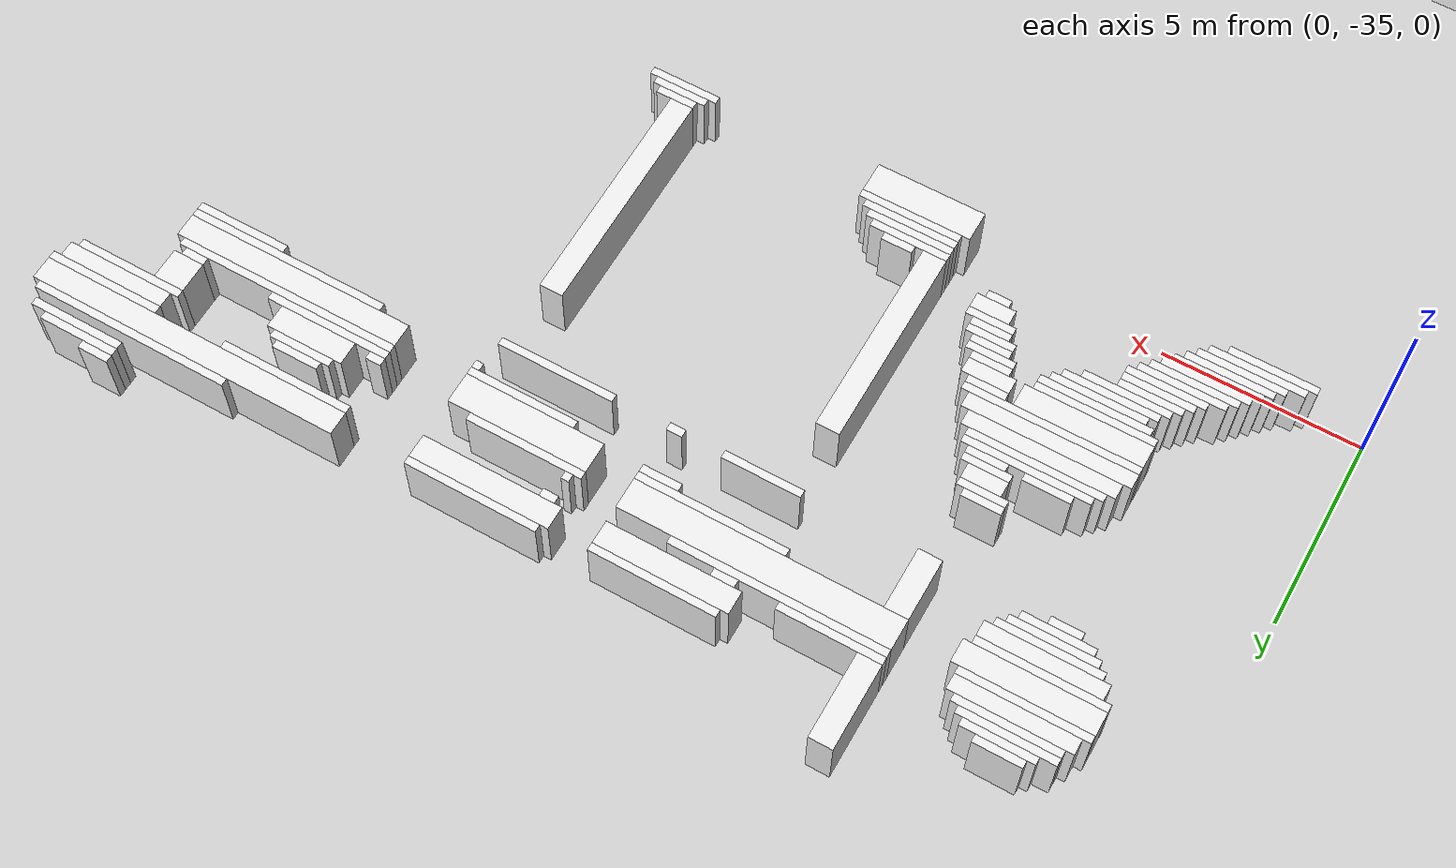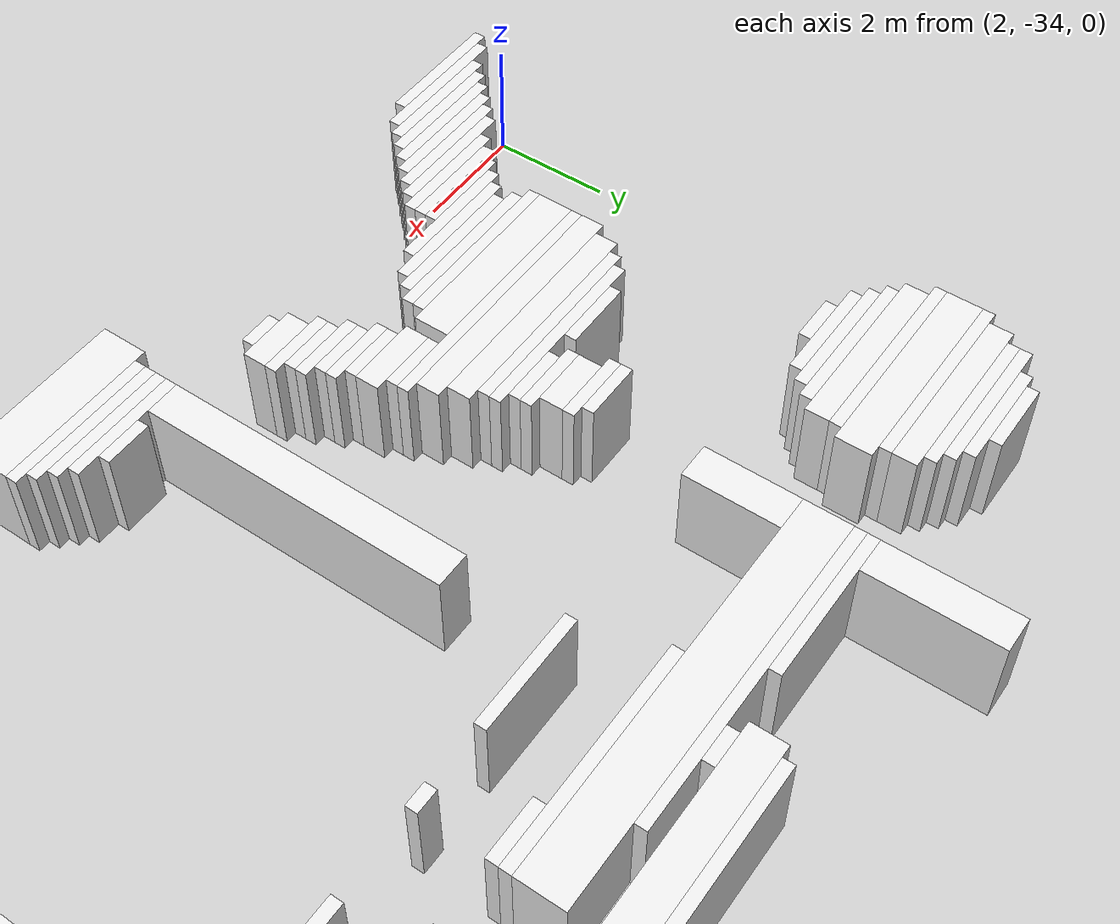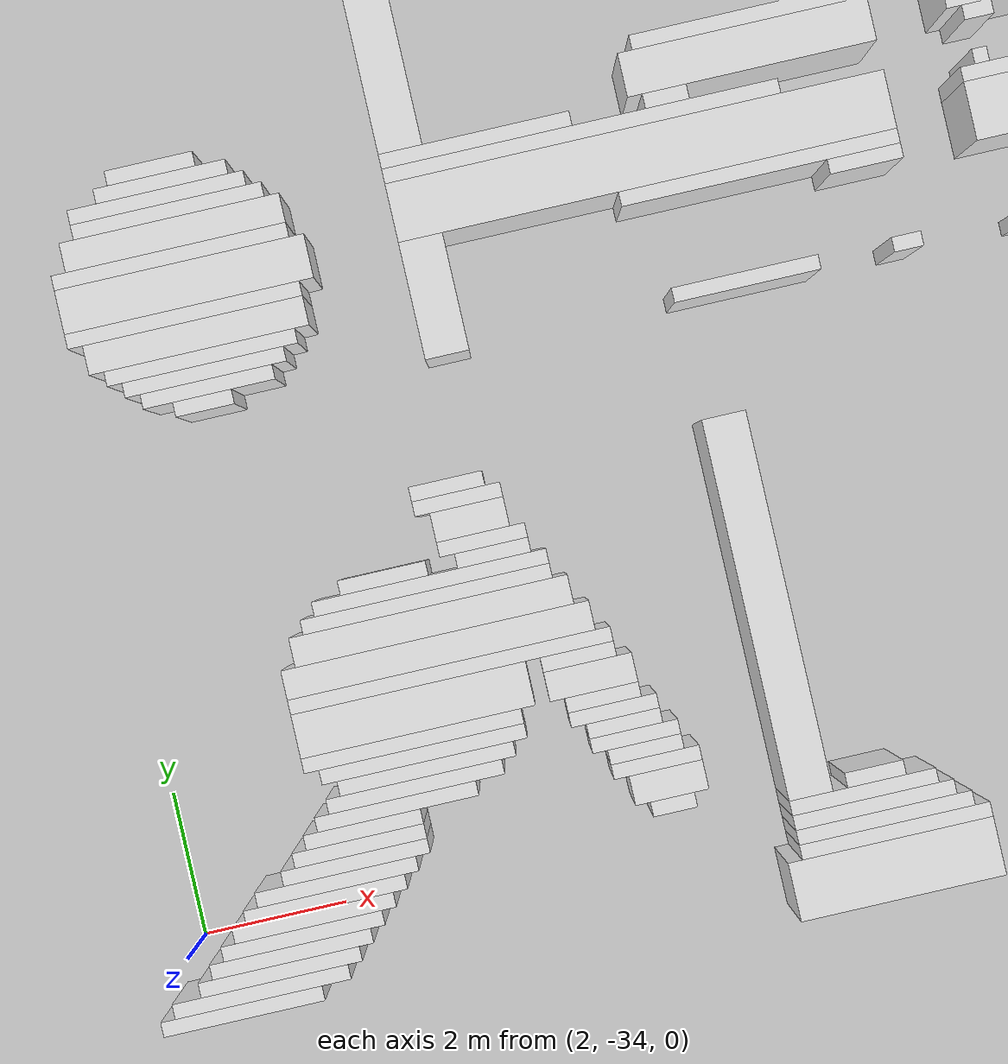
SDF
<sdf version="1.7">
 <world name="default">
  <model name="ground_plane">
   <static>1</static>
   <link name="link">
    <collision name="collision">
     <geometry><plane><normal>0 0 1</normal><size>120 120</size></plane></geometry>
    </collision>
    <visual name="visual">
     <geometry><plane><normal>0 0 1</normal><size>120 120</size></plane></geometry>
     <material>
      <script><uri>file://media/materials/scripts/gazebo.material</uri><name>Gazebo/Grey</name></script>
     </material>
    </visual>
   </link>
  </model>
  <model name="random_complex_03_model">
   <static>1</static>
   <link name="obs_2384">
    <pose>25.8000 -22.1000 0.8000 0 0 0</pose>
    <collision name="obs_2384_col"><geometry><box><size>0.8000 0.2000 1.6000</size></box></geometry></collision>
    <visual name="obs_2384_vis">
     <geometry><box><size>0.8000 0.2000 1.6000</size></box></geometry>
     <material>
      <script><uri>file://media/materials/scripts/gazebo.material</uri><name>Gazebo/White</name></script>
     </material>
    </visual>
   </link>
   <link name="obs_2390">
    <pose>26.4000 -22.3000 0.8000 0 0 0</pose>
    <collision name="obs_2390_col"><geometry><box><size>2.0000 0.2000 1.6000</size></box></geometry></collision>
    <visual name="obs_2390_vis">
     <geometry><box><size>2.0000 0.2000 1.6000</size></box></geometry>
     <material>
      <script><uri>file://media/materials/scripts/gazebo.material</uri><name>Gazebo/White</name></script>
     </material>
    </visual>
   </link>
   <link name="obs_2394">
    <pose>26.6000 -22.5000 0.8000 0 0 0</pose>
    <collision name="obs_2394_col"><geometry><box><size>2.4000 0.2000 1.6000</size></box></geometry></collision>
    <visual name="obs_2394_vis">
     <geometry><box><size>2.4000 0.2000 1.6000</size></box></geometry>
     <material>
      <script><uri>file://media/materials/scripts/gazebo.material</uri><name>Gazebo/White</name></script>
     </material>
    </visual>
   </link>
   <link name="obs_2403">
    <pose>25.4000 -22.9000 0.8000 0 0 0</pose>
    <collision name="obs_2403_col"><geometry><box><size>5.2000 0.2000 1.6000</size></box></geometry></collision>
    <visual name="obs_2403_vis">
     <geometry><box><size>5.2000 0.2000 1.6000</size></box></geometry>
     <material>
      <script><uri>file://media/materials/scripts/gazebo.material</uri><name>Gazebo/White</name></script>
     </material>
    </visual>
   </link>
   <link name="obs_2414">
    <pose>16.5000 -23.3000 0.8000 0 0 0</pose>
    <collision name="obs_2414_col"><geometry><box><size>3.4000 0.2000 1.6000</size></box></geometry></collision>
    <visual name="obs_2414_vis">
     <geometry><box><size>3.4000 0.2000 1.6000</size></box></geometry>
     <material>
      <script><uri>file://media/materials/scripts/gazebo.material</uri><name>Gazebo/White</name></script>
     </material>
    </visual>
   </link>
   <link name="obs_2417">
    <pose>24.1000 -23.3000 0.8000 0 0 0</pose>
    <collision name="obs_2417_col"><geometry><box><size>8.2000 0.6000 1.6000</size></box></geometry></collision>
    <visual name="obs_2417_vis">
     <geometry><box><size>8.2000 0.6000 1.6000</size></box></geometry>
     <material>
      <script><uri>file://media/materials/scripts/gazebo.material</uri><name>Gazebo/White</name></script>
     </material>
    </visual>
   </link>
   <link name="obs_2423">
    <pose>12.0000 -23.5000 0.8000 0 0 0</pose>
    <collision name="obs_2423_col"><geometry><box><size>3.2000 0.2000 1.6000</size></box></geometry></collision>
    <visual name="obs_2423_vis">
     <geometry><box><size>3.2000 0.2000 1.6000</size></box></geometry>
     <material>
      <script><uri>file://media/materials/scripts/gazebo.material</uri><name>Gazebo/White</name></script>
     </material>
    </visual>
   </link>
   <link name="obs_2428">
    <pose>3.8000 -23.7000 0.8000 0 0 0</pose>
    <collision name="obs_2428_col"><geometry><box><size>1.2000 0.2000 1.6000</size></box></geometry></collision>
    <visual name="obs_2428_vis">
     <geometry><box><size>1.2000 0.2000 1.6000</size></box></geometry>
     <material>
      <script><uri>file://media/materials/scripts/gazebo.material</uri><name>Gazebo/White</name></script>
     </material>
    </visual>
   </link>
   <link name="obs_2429">
    <pose>21.7000 -23.7000 0.8000 0 0 0</pose>
    <collision name="obs_2429_col"><geometry><box><size>3.4000 0.2000 1.6000</size></box></geometry></collision>
    <visual name="obs_2429_vis">
     <geometry><box><size>3.4000 0.2000 1.6000</size></box></geometry>
     <material>
      <script><uri>file://media/materials/scripts/gazebo.material</uri><name>Gazebo/White</name></script>
     </material>
    </visual>
   </link>
   <link name="obs_2430">
    <pose>26.7000 -23.7000 0.8000 0 0 0</pose>
    <collision name="obs_2430_col"><geometry><box><size>3.0000 0.2000 1.6000</size></box></geometry></collision>
    <visual name="obs_2430_vis">
     <geometry><box><size>3.0000 0.2000 1.6000</size></box></geometry>
     <material>
      <script><uri>file://media/materials/scripts/gazebo.material</uri><name>Gazebo/White</name></script>
     </material>
    </visual>
   </link>
   <link name="obs_2432">
    <pose>16.4000 -23.7000 0.8000 0 0 0</pose>
    <collision name="obs_2432_col"><geometry><box><size>3.6000 0.6000 1.6000</size></box></geometry></collision>
    <visual name="obs_2432_vis">
     <geometry><box><size>3.6000 0.6000 1.6000</size></box></geometry>
     <material>
      <script><uri>file://media/materials/scripts/gazebo.material</uri><name>Gazebo/White</name></script>
     </material>
    </visual>
   </link>
   <link name="obs_2436">
    <pose>3.9000 -23.9000 0.8000 0 0 0</pose>
    <collision name="obs_2436_col"><geometry><box><size>1.8000 0.2000 1.6000</size></box></geometry></collision>
    <visual name="obs_2436_vis">
     <geometry><box><size>1.8000 0.2000 1.6000</size></box></geometry>
     <material>
      <script><uri>file://media/materials/scripts/gazebo.material</uri><name>Gazebo/White</name></script>
     </material>
    </visual>
   </link>
   <link name="obs_2439">
    <pose>7.1000 -23.1000 0.8000 0 0 0</pose>
    <collision name="obs_2439_col"><geometry><box><size>0.6000 2.2000 1.6000</size></box></geometry></collision>
    <visual name="obs_2439_vis">
     <geometry><box><size>0.6000 2.2000 1.6000</size></box></geometry>
     <material>
      <script><uri>file://media/materials/scripts/gazebo.material</uri><name>Gazebo/White</name></script>
     </material>
    </visual>
   </link>
   <link name="obs_2440">
    <pose>11.9000 -23.9000 0.8000 0 0 0</pose>
    <collision name="obs_2440_col"><geometry><box><size>3.4000 0.6000 1.6000</size></box></geometry></collision>
    <visual name="obs_2440_vis">
     <geometry><box><size>3.4000 0.6000 1.6000</size></box></geometry>
     <material>
      <script><uri>file://media/materials/scripts/gazebo.material</uri><name>Gazebo/White</name></script>
     </material>
    </visual>
   </link>
   <link name="obs_2442">
    <pose>26.6000 -24.0000 0.8000 0 0 0</pose>
    <collision name="obs_2442_col"><geometry><box><size>2.8000 0.4000 1.6000</size></box></geometry></collision>
    <visual name="obs_2442_vis">
     <geometry><box><size>2.8000 0.4000 1.6000</size></box></geometry>
     <material>
      <script><uri>file://media/materials/scripts/gazebo.material</uri><name>Gazebo/White</name></script>
     </material>
    </visual>
   </link>
   <link name="obs_2444">
    <pose>3.8000 -24.1000 0.8000 0 0 0</pose>
    <collision name="obs_2444_col"><geometry><box><size>2.4000 0.2000 1.6000</size></box></geometry></collision>
    <visual name="obs_2444_vis">
     <geometry><box><size>2.4000 0.2000 1.6000</size></box></geometry>
     <material>
      <script><uri>file://media/materials/scripts/gazebo.material</uri><name>Gazebo/White</name></script>
     </material>
    </visual>
   </link>
   <link name="obs_2445">
    <pose>15.0000 -24.1000 0.8000 0 0 0</pose>
    <collision name="obs_2445_col"><geometry><box><size>0.4000 0.2000 1.6000</size></box></geometry></collision>
    <visual name="obs_2445_vis">
     <geometry><box><size>0.4000 0.2000 1.6000</size></box></geometry>
     <material>
      <script><uri>file://media/materials/scripts/gazebo.material</uri><name>Gazebo/White</name></script>
     </material>
    </visual>
   </link>
   <link name="obs_2450">
    <pose>3.9000 -24.3000 0.8000 0 0 0</pose>
    <collision name="obs_2450_col"><geometry><box><size>2.6000 0.2000 1.6000</size></box></geometry></collision>
    <visual name="obs_2450_vis">
     <geometry><box><size>2.6000 0.2000 1.6000</size></box></geometry>
     <material>
      <script><uri>file://media/materials/scripts/gazebo.material</uri><name>Gazebo/White</name></script>
     </material>
    </visual>
   </link>
   <link name="obs_2451">
    <pose>8.1000 -24.3000 0.8000 0 0 0</pose>
    <collision name="obs_2451_col"><geometry><box><size>2.6000 0.2000 1.6000</size></box></geometry></collision>
    <visual name="obs_2451_vis">
     <geometry><box><size>2.6000 0.2000 1.6000</size></box></geometry>
     <material>
      <script><uri>file://media/materials/scripts/gazebo.material</uri><name>Gazebo/White</name></script>
     </material>
    </visual>
   </link>
   <link name="obs_2452">
    <pose>10.7000 -24.3000 0.8000 0 0 0</pose>
    <collision name="obs_2452_col"><geometry><box><size>0.6000 0.2000 1.6000</size></box></geometry></collision>
    <visual name="obs_2452_vis">
     <geometry><box><size>0.6000 0.2000 1.6000</size></box></geometry>
     <material>
      <script><uri>file://media/materials/scripts/gazebo.material</uri><name>Gazebo/White</name></script>
     </material>
    </visual>
   </link>
   <link name="obs_2453">
    <pose>21.8000 -24.3000 0.8000 0 0 0</pose>
    <collision name="obs_2453_col"><geometry><box><size>1.2000 0.2000 1.6000</size></box></geometry></collision>
    <visual name="obs_2453_vis">
     <geometry><box><size>1.2000 0.2000 1.6000</size></box></geometry>
     <material>
      <script><uri>file://media/materials/scripts/gazebo.material</uri><name>Gazebo/White</name></script>
     </material>
    </visual>
   </link>
   <link name="obs_2454">
    <pose>26.4000 -24.3000 0.8000 0 0 0</pose>
    <collision name="obs_2454_col"><geometry><box><size>2.8000 0.2000 1.6000</size></box></geometry></collision>
    <visual name="obs_2454_vis">
     <geometry><box><size>2.8000 0.2000 1.6000</size></box></geometry>
     <material>
      <script><uri>file://media/materials/scripts/gazebo.material</uri><name>Gazebo/White</name></script>
     </material>
    </visual>
   </link>
   <link name="obs_2459">
    <pose>9.5000 -24.5000 0.8000 0 0 0</pose>
    <collision name="obs_2459_col"><geometry><box><size>5.4000 0.2000 1.6000</size></box></geometry></collision>
    <visual name="obs_2459_vis">
     <geometry><box><size>5.4000 0.2000 1.6000</size></box></geometry>
     <material>
      <script><uri>file://media/materials/scripts/gazebo.material</uri><name>Gazebo/White</name></script>
     </material>
    </visual>
   </link>
   <link name="obs_2460">
    <pose>21.8000 -24.5000 0.8000 0 0 0</pose>
    <collision name="obs_2460_col"><geometry><box><size>1.6000 0.2000 1.6000</size></box></geometry></collision>
    <visual name="obs_2460_vis">
     <geometry><box><size>1.6000 0.2000 1.6000</size></box></geometry>
     <material>
      <script><uri>file://media/materials/scripts/gazebo.material</uri><name>Gazebo/White</name></script>
     </material>
    </visual>
   </link>
   <link name="obs_2463">
    <pose>3.9000 -24.6000 0.8000 0 0 0</pose>
    <collision name="obs_2463_col"><geometry><box><size>3.0000 0.4000 1.6000</size></box></geometry></collision>
    <visual name="obs_2463_vis">
     <geometry><box><size>3.0000 0.4000 1.6000</size></box></geometry>
     <material>
      <script><uri>file://media/materials/scripts/gazebo.material</uri><name>Gazebo/White</name></script>
     </material>
    </visual>
   </link>
   <link name="obs_2466">
    <pose>14.9000 -24.7000 0.8000 0 0 0</pose>
    <collision name="obs_2466_col"><geometry><box><size>0.2000 0.2000 1.6000</size></box></geometry></collision>
    <visual name="obs_2466_vis">
     <geometry><box><size>0.2000 0.2000 1.6000</size></box></geometry>
     <material>
      <script><uri>file://media/materials/scripts/gazebo.material</uri><name>Gazebo/White</name></script>
     </material>
    </visual>
   </link>
   <link name="obs_2471">
    <pose>3.8000 -24.9000 0.8000 0 0 0</pose>
    <collision name="obs_2471_col"><geometry><box><size>3.2000 0.2000 1.6000</size></box></geometry></collision>
    <visual name="obs_2471_vis">
     <geometry><box><size>3.2000 0.2000 1.6000</size></box></geometry>
     <material>
      <script><uri>file://media/materials/scripts/gazebo.material</uri><name>Gazebo/White</name></script>
     </material>
    </visual>
   </link>
   <link name="obs_2472">
    <pose>16.1000 -24.9000 0.8000 0 0 0</pose>
    <collision name="obs_2472_col"><geometry><box><size>3.0000 0.2000 1.6000</size></box></geometry></collision>
    <visual name="obs_2472_vis">
     <geometry><box><size>3.0000 0.2000 1.6000</size></box></geometry>
     <material>
      <script><uri>file://media/materials/scripts/gazebo.material</uri><name>Gazebo/White</name></script>
     </material>
    </visual>
   </link>
   <link name="obs_2475">
    <pose>25.4000 -24.8000 0.8000 0 0 0</pose>
    <collision name="obs_2475_col"><geometry><box><size>0.8000 0.8000 1.6000</size></box></geometry></collision>
    <visual name="obs_2475_vis">
     <geometry><box><size>0.8000 0.8000 1.6000</size></box></geometry>
     <material>
      <script><uri>file://media/materials/scripts/gazebo.material</uri><name>Gazebo/White</name></script>
     </material>
    </visual>
   </link>
   <link name="obs_2476">
    <pose>21.8000 -24.9000 0.8000 0 0 0</pose>
    <collision name="obs_2476_col"><geometry><box><size>2.0000 0.6000 1.6000</size></box></geometry></collision>
    <visual name="obs_2476_vis">
     <geometry><box><size>2.0000 0.6000 1.6000</size></box></geometry>
     <material>
      <script><uri>file://media/materials/scripts/gazebo.material</uri><name>Gazebo/White</name></script>
     </material>
    </visual>
   </link>
   <link name="obs_2478">
    <pose>20.2000 -25.1000 0.8000 0 0 0</pose>
    <collision name="obs_2478_col"><geometry><box><size>0.4000 0.2000 1.6000</size></box></geometry></collision>
    <visual name="obs_2478_vis">
     <geometry><box><size>0.4000 0.2000 1.6000</size></box></geometry>
     <material>
      <script><uri>file://media/materials/scripts/gazebo.material</uri><name>Gazebo/White</name></script>
     </material>
    </visual>
   </link>
   <link name="obs_2481">
    <pose>10.2000 -25.0000 0.8000 0 0 0</pose>
    <collision name="obs_2481_col"><geometry><box><size>6.8000 0.8000 1.6000</size></box></geometry></collision>
    <visual name="obs_2481_vis">
     <geometry><box><size>6.8000 0.8000 1.6000</size></box></geometry>
     <material>
      <script><uri>file://media/materials/scripts/gazebo.material</uri><name>Gazebo/White</name></script>
     </material>
    </visual>
   </link>
   <link name="obs_2484">
    <pose>21.6000 -25.3000 0.8000 0 0 0</pose>
    <collision name="obs_2484_col"><geometry><box><size>3.2000 0.2000 1.6000</size></box></geometry></collision>
    <visual name="obs_2484_vis">
     <geometry><box><size>3.2000 0.2000 1.6000</size></box></geometry>
     <material>
      <script><uri>file://media/materials/scripts/gazebo.material</uri><name>Gazebo/White</name></script>
     </material>
    </visual>
   </link>
   <link name="obs_2485">
    <pose>25.3000 -25.3000 0.8000 0 0 0</pose>
    <collision name="obs_2485_col"><geometry><box><size>0.6000 0.2000 1.6000</size></box></geometry></collision>
    <visual name="obs_2485_vis">
     <geometry><box><size>0.6000 0.2000 1.6000</size></box></geometry>
     <material>
      <script><uri>file://media/materials/scripts/gazebo.material</uri><name>Gazebo/White</name></script>
     </material>
    </visual>
   </link>
   <link name="obs_2488">
    <pose>3.9000 -25.3000 0.8000 0 0 0</pose>
    <collision name="obs_2488_col"><geometry><box><size>3.4000 0.6000 1.6000</size></box></geometry></collision>
    <visual name="obs_2488_vis">
     <geometry><box><size>3.4000 0.6000 1.6000</size></box></geometry>
     <material>
      <script><uri>file://media/materials/scripts/gazebo.material</uri><name>Gazebo/White</name></script>
     </material>
    </visual>
   </link>
   <link name="obs_2491">
    <pose>11.7000 -25.5000 0.8000 0 0 0</pose>
    <collision name="obs_2491_col"><geometry><box><size>3.8000 0.2000 1.6000</size></box></geometry></collision>
    <visual name="obs_2491_vis">
     <geometry><box><size>3.8000 0.2000 1.6000</size></box></geometry>
     <material>
      <script><uri>file://media/materials/scripts/gazebo.material</uri><name>Gazebo/White</name></script>
     </material>
    </visual>
   </link>
   <link name="obs_2492">
    <pose>22.9000 -25.5000 0.8000 0 0 0</pose>
    <collision name="obs_2492_col"><geometry><box><size>5.8000 0.2000 1.6000</size></box></geometry></collision>
    <visual name="obs_2492_vis">
     <geometry><box><size>5.8000 0.2000 1.6000</size></box></geometry>
     <material>
      <script><uri>file://media/materials/scripts/gazebo.material</uri><name>Gazebo/White</name></script>
     </material>
    </visual>
   </link>
   <link name="obs_2494">
    <pose>16.4000 -25.4000 0.8000 0 0 0</pose>
    <collision name="obs_2494_col"><geometry><box><size>3.6000 0.8000 1.6000</size></box></geometry></collision>
    <visual name="obs_2494_vis">
     <geometry><box><size>3.6000 0.8000 1.6000</size></box></geometry>
     <material>
      <script><uri>file://media/materials/scripts/gazebo.material</uri><name>Gazebo/White</name></script>
     </material>
    </visual>
   </link>
   <link name="obs_2497">
    <pose>3.8000 -25.7000 0.8000 0 0 0</pose>
    <collision name="obs_2497_col"><geometry><box><size>3.2000 0.2000 1.6000</size></box></geometry></collision>
    <visual name="obs_2497_vis">
     <geometry><box><size>3.2000 0.2000 1.6000</size></box></geometry>
     <material>
      <script><uri>file://media/materials/scripts/gazebo.material</uri><name>Gazebo/White</name></script>
     </material>
    </visual>
   </link>
   <link name="obs_2498">
    <pose>13.1000 -25.7000 0.8000 0 0 0</pose>
    <collision name="obs_2498_col"><geometry><box><size>1.0000 0.2000 1.6000</size></box></geometry></collision>
    <visual name="obs_2498_vis">
     <geometry><box><size>1.0000 0.2000 1.6000</size></box></geometry>
     <material>
      <script><uri>file://media/materials/scripts/gazebo.material</uri><name>Gazebo/White</name></script>
     </material>
    </visual>
   </link>
   <link name="obs_2506">
    <pose>16.8000 -25.9000 0.8000 0 0 0</pose>
    <collision name="obs_2506_col"><geometry><box><size>2.8000 0.2000 1.6000</size></box></geometry></collision>
    <visual name="obs_2506_vis">
     <geometry><box><size>2.8000 0.2000 1.6000</size></box></geometry>
     <material>
      <script><uri>file://media/materials/scripts/gazebo.material</uri><name>Gazebo/White</name></script>
     </material>
    </visual>
   </link>
   <link name="obs_2508">
    <pose>23.0000 -25.9000 0.8000 0 0 0</pose>
    <collision name="obs_2508_col"><geometry><box><size>6.0000 0.6000 1.6000</size></box></geometry></collision>
    <visual name="obs_2508_vis">
     <geometry><box><size>6.0000 0.6000 1.6000</size></box></geometry>
     <material>
      <script><uri>file://media/materials/scripts/gazebo.material</uri><name>Gazebo/White</name></script>
     </material>
    </visual>
   </link>
   <link name="obs_2509">
    <pose>3.9000 -26.0000 0.8000 0 0 0</pose>
    <collision name="obs_2509_col"><geometry><box><size>3.0000 0.4000 1.6000</size></box></geometry></collision>
    <visual name="obs_2509_vis">
     <geometry><box><size>3.0000 0.4000 1.6000</size></box></geometry>
     <material>
      <script><uri>file://media/materials/scripts/gazebo.material</uri><name>Gazebo/White</name></script>
     </material>
    </visual>
   </link>
   <link name="obs_2514">
    <pose>18.1000 -26.1000 0.8000 0 0 0</pose>
    <collision name="obs_2514_col"><geometry><box><size>0.2000 0.2000 1.6000</size></box></geometry></collision>
    <visual name="obs_2514_vis">
     <geometry><box><size>0.2000 0.2000 1.6000</size></box></geometry>
     <material>
      <script><uri>file://media/materials/scripts/gazebo.material</uri><name>Gazebo/White</name></script>
     </material>
    </visual>
   </link>
   <link name="obs_2522">
    <pose>3.9000 -26.3000 0.8000 0 0 0</pose>
    <collision name="obs_2522_col"><geometry><box><size>2.6000 0.2000 1.6000</size></box></geometry></collision>
    <visual name="obs_2522_vis">
     <geometry><box><size>2.6000 0.2000 1.6000</size></box></geometry>
     <material>
      <script><uri>file://media/materials/scripts/gazebo.material</uri><name>Gazebo/White</name></script>
     </material>
    </visual>
   </link>
   <link name="obs_2523">
    <pose>23.4000 -26.3000 0.8000 0 0 0</pose>
    <collision name="obs_2523_col"><geometry><box><size>5.2000 0.2000 1.6000</size></box></geometry></collision>
    <visual name="obs_2523_vis">
     <geometry><box><size>5.2000 0.2000 1.6000</size></box></geometry>
     <material>
      <script><uri>file://media/materials/scripts/gazebo.material</uri><name>Gazebo/White</name></script>
     </material>
    </visual>
   </link>
   <link name="obs_2527">
    <pose>3.9000 -26.5000 0.8000 0 0 0</pose>
    <collision name="obs_2527_col"><geometry><box><size>2.2000 0.2000 1.6000</size></box></geometry></collision>
    <visual name="obs_2527_vis">
     <geometry><box><size>2.2000 0.2000 1.6000</size></box></geometry>
     <material>
      <script><uri>file://media/materials/scripts/gazebo.material</uri><name>Gazebo/White</name></script>
     </material>
    </visual>
   </link>
   <link name="obs_2528">
    <pose>24.8000 -26.5000 0.8000 0 0 0</pose>
    <collision name="obs_2528_col"><geometry><box><size>2.4000 0.2000 1.6000</size></box></geometry></collision>
    <visual name="obs_2528_vis">
     <geometry><box><size>2.4000 0.2000 1.6000</size></box></geometry>
     <material>
      <script><uri>file://media/materials/scripts/gazebo.material</uri><name>Gazebo/White</name></script>
     </material>
    </visual>
   </link>
   <link name="obs_2535">
    <pose>3.9000 -26.7000 0.8000 0 0 0</pose>
    <collision name="obs_2535_col"><geometry><box><size>1.8000 0.2000 1.6000</size></box></geometry></collision>
    <visual name="obs_2535_vis">
     <geometry><box><size>1.8000 0.2000 1.6000</size></box></geometry>
     <material>
      <script><uri>file://media/materials/scripts/gazebo.material</uri><name>Gazebo/White</name></script>
     </material>
    </visual>
   </link>
   <link name="obs_2539">
    <pose>7.1000 -26.2000 0.8000 0 0 0</pose>
    <collision name="obs_2539_col"><geometry><box><size>0.6000 1.6000 1.6000</size></box></geometry></collision>
    <visual name="obs_2539_vis">
     <geometry><box><size>0.6000 1.6000 1.6000</size></box></geometry>
     <material>
      <script><uri>file://media/materials/scripts/gazebo.material</uri><name>Gazebo/White</name></script>
     </material>
    </visual>
   </link>
   <link name="obs_2541">
    <pose>3.8000 -26.9000 0.8000 0 0 0</pose>
    <collision name="obs_2541_col"><geometry><box><size>0.8000 0.2000 1.6000</size></box></geometry></collision>
    <visual name="obs_2541_vis">
     <geometry><box><size>0.8000 0.2000 1.6000</size></box></geometry>
     <material>
      <script><uri>file://media/materials/scripts/gazebo.material</uri><name>Gazebo/White</name></script>
     </material>
    </visual>
   </link>
   <link name="obs_2542">
    <pose>11.2000 -26.9000 0.8000 0 0 0</pose>
    <collision name="obs_2542_col"><geometry><box><size>2.0000 0.2000 1.6000</size></box></geometry></collision>
    <visual name="obs_2542_vis">
     <geometry><box><size>2.0000 0.2000 1.6000</size></box></geometry>
     <material>
      <script><uri>file://media/materials/scripts/gazebo.material</uri><name>Gazebo/White</name></script>
     </material>
    </visual>
   </link>
   <link name="obs_2543">
    <pose>13.4000 -26.9000 0.8000 0 0 0</pose>
    <collision name="obs_2543_col"><geometry><box><size>0.4000 0.2000 1.6000</size></box></geometry></collision>
    <visual name="obs_2543_vis">
     <geometry><box><size>0.4000 0.2000 1.6000</size></box></geometry>
     <material>
      <script><uri>file://media/materials/scripts/gazebo.material</uri><name>Gazebo/White</name></script>
     </material>
    </visual>
   </link>
   <link name="obs_2544">
    <pose>16.5000 -26.9000 0.8000 0 0 0</pose>
    <collision name="obs_2544_col"><geometry><box><size>3.0000 0.2000 1.6000</size></box></geometry></collision>
    <visual name="obs_2544_vis">
     <geometry><box><size>3.0000 0.2000 1.6000</size></box></geometry>
     <material>
      <script><uri>file://media/materials/scripts/gazebo.material</uri><name>Gazebo/White</name></script>
     </material>
    </visual>
   </link>
   <link name="obs_2566">
    <pose>6.7000 -28.7000 0.8000 0 0 0</pose>
    <collision name="obs_2566_col"><geometry><box><size>1.0000 0.2000 1.6000</size></box></geometry></collision>
    <visual name="obs_2566_vis">
     <geometry><box><size>1.0000 0.2000 1.6000</size></box></geometry>
     <material>
      <script><uri>file://media/materials/scripts/gazebo.material</uri><name>Gazebo/White</name></script>
     </material>
    </visual>
   </link>
   <link name="obs_2570">
    <pose>6.8000 -28.9000 0.8000 0 0 0</pose>
    <collision name="obs_2570_col"><geometry><box><size>1.2000 0.2000 1.6000</size></box></geometry></collision>
    <visual name="obs_2570_vis">
     <geometry><box><size>1.2000 0.2000 1.6000</size></box></geometry>
     <material>
      <script><uri>file://media/materials/scripts/gazebo.material</uri><name>Gazebo/White</name></script>
     </material>
    </visual>
   </link>
   <link name="obs_2578">
    <pose>6.9000 -29.2000 0.8000 0 0 0</pose>
    <collision name="obs_2578_col"><geometry><box><size>1.0000 0.4000 1.6000</size></box></geometry></collision>
    <visual name="obs_2578_vis">
     <geometry><box><size>1.0000 0.4000 1.6000</size></box></geometry>
     <material>
      <script><uri>file://media/materials/scripts/gazebo.material</uri><name>Gazebo/White</name></script>
     </material>
    </visual>
   </link>
   <link name="obs_2585">
    <pose>7.0000 -29.5000 0.8000 0 0 0</pose>
    <collision name="obs_2585_col"><geometry><box><size>1.2000 0.2000 1.6000</size></box></geometry></collision>
    <visual name="obs_2585_vis">
     <geometry><box><size>1.2000 0.2000 1.6000</size></box></geometry>
     <material>
      <script><uri>file://media/materials/scripts/gazebo.material</uri><name>Gazebo/White</name></script>
     </material>
    </visual>
   </link>
   <link name="obs_2590">
    <pose>5.6000 -29.7000 0.8000 0 0 0</pose>
    <collision name="obs_2590_col"><geometry><box><size>1.2000 0.2000 1.6000</size></box></geometry></collision>
    <visual name="obs_2590_vis">
     <geometry><box><size>1.2000 0.2000 1.6000</size></box></geometry>
     <material>
      <script><uri>file://media/materials/scripts/gazebo.material</uri><name>Gazebo/White</name></script>
     </material>
    </visual>
   </link>
   <link name="obs_2591">
    <pose>7.1000 -29.7000 0.8000 0 0 0</pose>
    <collision name="obs_2591_col"><geometry><box><size>1.0000 0.2000 1.6000</size></box></geometry></collision>
    <visual name="obs_2591_vis">
     <geometry><box><size>1.0000 0.2000 1.6000</size></box></geometry>
     <material>
      <script><uri>file://media/materials/scripts/gazebo.material</uri><name>Gazebo/White</name></script>
     </material>
    </visual>
   </link>
   <link name="obs_2596">
    <pose>6.2000 -29.9000 0.8000 0 0 0</pose>
    <collision name="obs_2596_col"><geometry><box><size>3.2000 0.2000 1.6000</size></box></geometry></collision>
    <visual name="obs_2596_vis">
     <geometry><box><size>3.2000 0.2000 1.6000</size></box></geometry>
     <material>
      <script><uri>file://media/materials/scripts/gazebo.material</uri><name>Gazebo/White</name></script>
     </material>
    </visual>
   </link>
   <link name="obs_2601">
    <pose>6.1000 -30.1000 0.8000 0 0 0</pose>
    <collision name="obs_2601_col"><geometry><box><size>3.4000 0.2000 1.6000</size></box></geometry></collision>
    <visual name="obs_2601_vis">
     <geometry><box><size>3.4000 0.2000 1.6000</size></box></geometry>
     <material>
      <script><uri>file://media/materials/scripts/gazebo.material</uri><name>Gazebo/White</name></script>
     </material>
    </visual>
   </link>
   <link name="obs_2609">
    <pose>6.1000 -30.4000 0.8000 0 0 0</pose>
    <collision name="obs_2609_col"><geometry><box><size>3.8000 0.4000 1.6000</size></box></geometry></collision>
    <visual name="obs_2609_vis">
     <geometry><box><size>3.8000 0.4000 1.6000</size></box></geometry>
     <material>
      <script><uri>file://media/materials/scripts/gazebo.material</uri><name>Gazebo/White</name></script>
     </material>
    </visual>
   </link>
   <link name="obs_2620">
    <pose>6.1000 -30.8000 0.8000 0 0 0</pose>
    <collision name="obs_2620_col"><geometry><box><size>4.2000 0.4000 1.6000</size></box></geometry></collision>
    <visual name="obs_2620_vis">
     <geometry><box><size>4.2000 0.4000 1.6000</size></box></geometry>
     <material>
      <script><uri>file://media/materials/scripts/gazebo.material</uri><name>Gazebo/White</name></script>
     </material>
    </visual>
   </link>
   <link name="obs_2629">
    <pose>6.2000 -31.1000 0.8000 0 0 0</pose>
    <collision name="obs_2629_col"><geometry><box><size>4.4000 0.2000 1.6000</size></box></geometry></collision>
    <visual name="obs_2629_vis">
     <geometry><box><size>4.4000 0.2000 1.6000</size></box></geometry>
     <material>
      <script><uri>file://media/materials/scripts/gazebo.material</uri><name>Gazebo/White</name></script>
     </material>
    </visual>
   </link>
   <link name="obs_2636">
    <pose>7.9000 -31.3000 0.8000 0 0 0</pose>
    <collision name="obs_2636_col"><geometry><box><size>1.0000 0.2000 1.6000</size></box></geometry></collision>
    <visual name="obs_2636_vis">
     <geometry><box><size>1.0000 0.2000 1.6000</size></box></geometry>
     <material>
      <script><uri>file://media/materials/scripts/gazebo.material</uri><name>Gazebo/White</name></script>
     </material>
    </visual>
   </link>
   <link name="obs_2644">
    <pose>5.6000 -31.5000 0.8000 0 0 0</pose>
    <collision name="obs_2644_col"><geometry><box><size>3.2000 0.6000 1.6000</size></box></geometry></collision>
    <visual name="obs_2644_vis">
     <geometry><box><size>3.2000 0.6000 1.6000</size></box></geometry>
     <material>
      <script><uri>file://media/materials/scripts/gazebo.material</uri><name>Gazebo/White</name></script>
     </material>
    </visual>
   </link>
   <link name="obs_2645">
    <pose>8.0000 -31.6000 0.8000 0 0 0</pose>
    <collision name="obs_2645_col"><geometry><box><size>1.2000 0.4000 1.6000</size></box></geometry></collision>
    <visual name="obs_2645_vis">
     <geometry><box><size>1.2000 0.4000 1.6000</size></box></geometry>
     <material>
      <script><uri>file://media/materials/scripts/gazebo.material</uri><name>Gazebo/White</name></script>
     </material>
    </visual>
   </link>
   <link name="obs_2656">
    <pose>5.5000 -31.9000 0.8000 0 0 0</pose>
    <collision name="obs_2656_col"><geometry><box><size>3.0000 0.2000 1.6000</size></box></geometry></collision>
    <visual name="obs_2656_vis">
     <geometry><box><size>3.0000 0.2000 1.6000</size></box></geometry>
     <material>
      <script><uri>file://media/materials/scripts/gazebo.material</uri><name>Gazebo/White</name></script>
     </material>
    </visual>
   </link>
   <link name="obs_2657">
    <pose>8.1000 -31.9000 0.8000 0 0 0</pose>
    <collision name="obs_2657_col"><geometry><box><size>1.0000 0.2000 1.6000</size></box></geometry></collision>
    <visual name="obs_2657_vis">
     <geometry><box><size>1.0000 0.2000 1.6000</size></box></geometry>
     <material>
      <script><uri>file://media/materials/scripts/gazebo.material</uri><name>Gazebo/White</name></script>
     </material>
    </visual>
   </link>
   <link name="obs_2663">
    <pose>5.6000 -32.1000 0.8000 0 0 0</pose>
    <collision name="obs_2663_col"><geometry><box><size>2.8000 0.2000 1.6000</size></box></geometry></collision>
    <visual name="obs_2663_vis">
     <geometry><box><size>2.8000 0.2000 1.6000</size></box></geometry>
     <material>
      <script><uri>file://media/materials/scripts/gazebo.material</uri><name>Gazebo/White</name></script>
     </material>
    </visual>
   </link>
   <link name="obs_2664">
    <pose>8.2000 -32.1000 0.8000 0 0 0</pose>
    <collision name="obs_2664_col"><geometry><box><size>1.2000 0.2000 1.6000</size></box></geometry></collision>
    <visual name="obs_2664_vis">
     <geometry><box><size>1.2000 0.2000 1.6000</size></box></geometry>
     <material>
      <script><uri>file://media/materials/scripts/gazebo.material</uri><name>Gazebo/White</name></script>
     </material>
    </visual>
   </link>
   <link name="obs_2670">
    <pose>5.6000 -32.3000 0.8000 0 0 0</pose>
    <collision name="obs_2670_col"><geometry><box><size>2.4000 0.2000 1.6000</size></box></geometry></collision>
    <visual name="obs_2670_vis">
     <geometry><box><size>2.4000 0.2000 1.6000</size></box></geometry>
     <material>
      <script><uri>file://media/materials/scripts/gazebo.material</uri><name>Gazebo/White</name></script>
     </material>
    </visual>
   </link>
   <link name="obs_2671">
    <pose>8.3000 -32.3000 0.8000 0 0 0</pose>
    <collision name="obs_2671_col"><geometry><box><size>1.0000 0.2000 1.6000</size></box></geometry></collision>
    <visual name="obs_2671_vis">
     <geometry><box><size>1.0000 0.2000 1.6000</size></box></geometry>
     <material>
      <script><uri>file://media/materials/scripts/gazebo.material</uri><name>Gazebo/White</name></script>
     </material>
    </visual>
   </link>
   <link name="obs_2679">
    <pose>5.4000 -32.5000 0.8000 0 0 0</pose>
    <collision name="obs_2679_col"><geometry><box><size>2.4000 0.2000 1.6000</size></box></geometry></collision>
    <visual name="obs_2679_vis">
     <geometry><box><size>2.4000 0.2000 1.6000</size></box></geometry>
     <material>
      <script><uri>file://media/materials/scripts/gazebo.material</uri><name>Gazebo/White</name></script>
     </material>
    </visual>
   </link>
   <link name="obs_2680">
    <pose>8.4000 -32.5000 0.8000 0 0 0</pose>
    <collision name="obs_2680_col"><geometry><box><size>1.2000 0.2000 1.6000</size></box></geometry></collision>
    <visual name="obs_2680_vis">
     <geometry><box><size>1.2000 0.2000 1.6000</size></box></geometry>
     <material>
      <script><uri>file://media/materials/scripts/gazebo.material</uri><name>Gazebo/White</name></script>
     </material>
    </visual>
   </link>
   <link name="obs_2685">
    <pose>5.1000 -32.7000 0.8000 0 0 0</pose>
    <collision name="obs_2685_col"><geometry><box><size>2.2000 0.2000 1.6000</size></box></geometry></collision>
    <visual name="obs_2685_vis">
     <geometry><box><size>2.2000 0.2000 1.6000</size></box></geometry>
     <material>
      <script><uri>file://media/materials/scripts/gazebo.material</uri><name>Gazebo/White</name></script>
     </material>
    </visual>
   </link>
   <link name="obs_2686">
    <pose>8.5000 -32.7000 0.8000 0 0 0</pose>
    <collision name="obs_2686_col"><geometry><box><size>1.0000 0.2000 1.6000</size></box></geometry></collision>
    <visual name="obs_2686_vis">
     <geometry><box><size>1.0000 0.2000 1.6000</size></box></geometry>
     <material>
      <script><uri>file://media/materials/scripts/gazebo.material</uri><name>Gazebo/White</name></script>
     </material>
    </visual>
   </link>
   <link name="obs_2694">
    <pose>4.6000 -32.9000 0.8000 0 0 0</pose>
    <collision name="obs_2694_col"><geometry><box><size>1.6000 0.2000 1.6000</size></box></geometry></collision>
    <visual name="obs_2694_vis">
     <geometry><box><size>1.6000 0.2000 1.6000</size></box></geometry>
     <material>
      <script><uri>file://media/materials/scripts/gazebo.material</uri><name>Gazebo/White</name></script>
     </material>
    </visual>
   </link>
   <link name="obs_2695">
    <pose>8.6000 -32.9000 0.8000 0 0 0</pose>
    <collision name="obs_2695_col"><geometry><box><size>1.2000 0.2000 1.6000</size></box></geometry></collision>
    <visual name="obs_2695_vis">
     <geometry><box><size>1.2000 0.2000 1.6000</size></box></geometry>
     <material>
      <script><uri>file://media/materials/scripts/gazebo.material</uri><name>Gazebo/White</name></script>
     </material>
    </visual>
   </link>
   <link name="obs_2702">
    <pose>4.5000 -33.1000 0.8000 0 0 0</pose>
    <collision name="obs_2702_col"><geometry><box><size>1.8000 0.2000 1.6000</size></box></geometry></collision>
    <visual name="obs_2702_vis">
     <geometry><box><size>1.8000 0.2000 1.6000</size></box></geometry>
     <material>
      <script><uri>file://media/materials/scripts/gazebo.material</uri><name>Gazebo/White</name></script>
     </material>
    </visual>
   </link>
   <link name="obs_2704">
    <pose>8.7000 -33.2000 0.8000 0 0 0</pose>
    <collision name="obs_2704_col"><geometry><box><size>1.0000 0.4000 1.6000</size></box></geometry></collision>
    <visual name="obs_2704_vis">
     <geometry><box><size>1.0000 0.4000 1.6000</size></box></geometry>
     <material>
      <script><uri>file://media/materials/scripts/gazebo.material</uri><name>Gazebo/White</name></script>
     </material>
    </visual>
   </link>
   <link name="obs_2709">
    <pose>4.4000 -33.3000 0.8000 0 0 0</pose>
    <collision name="obs_2709_col"><geometry><box><size>2.0000 0.2000 1.6000</size></box></geometry></collision>
    <visual name="obs_2709_vis">
     <geometry><box><size>2.0000 0.2000 1.6000</size></box></geometry>
     <material>
      <script><uri>file://media/materials/scripts/gazebo.material</uri><name>Gazebo/White</name></script>
     </material>
    </visual>
   </link>
   <link name="obs_2714">
    <pose>4.1000 -33.5000 0.8000 0 0 0</pose>
    <collision name="obs_2714_col"><geometry><box><size>2.2000 0.2000 1.6000</size></box></geometry></collision>
    <visual name="obs_2714_vis">
     <geometry><box><size>2.2000 0.2000 1.6000</size></box></geometry>
     <material>
      <script><uri>file://media/materials/scripts/gazebo.material</uri><name>Gazebo/White</name></script>
     </material>
    </visual>
   </link>
   <link name="obs_2715">
    <pose>8.7000 -33.5000 0.8000 0 0 0</pose>
    <collision name="obs_2715_col"><geometry><box><size>0.6000 0.2000 1.6000</size></box></geometry></collision>
    <visual name="obs_2715_vis">
     <geometry><box><size>0.6000 0.2000 1.6000</size></box></geometry>
     <material>
      <script><uri>file://media/materials/scripts/gazebo.material</uri><name>Gazebo/White</name></script>
     </material>
    </visual>
   </link>
   <link name="obs_2718">
    <pose>10.5000 -31.2000 0.8000 0 0 0</pose>
    <collision name="obs_2718_col"><geometry><box><size>0.6000 5.2000 1.6000</size></box></geometry></collision>
    <visual name="obs_2718_vis">
     <geometry><box><size>0.6000 5.2000 1.6000</size></box></geometry>
     <material>
      <script><uri>file://media/materials/scripts/gazebo.material</uri><name>Gazebo/White</name></script>
     </material>
    </visual>
   </link>
   <link name="obs_2722">
    <pose>3.9000 -33.7000 0.8000 0 0 0</pose>
    <collision name="obs_2722_col"><geometry><box><size>2.2000 0.2000 1.6000</size></box></geometry></collision>
    <visual name="obs_2722_vis">
     <geometry><box><size>2.2000 0.2000 1.6000</size></box></geometry>
     <material>
      <script><uri>file://media/materials/scripts/gazebo.material</uri><name>Gazebo/White</name></script>
     </material>
    </visual>
   </link>
   <link name="obs_2723">
    <pose>11.4000 -33.7000 0.8000 0 0 0</pose>
    <collision name="obs_2723_col"><geometry><box><size>0.8000 0.2000 1.6000</size></box></geometry></collision>
    <visual name="obs_2723_vis">
     <geometry><box><size>0.8000 0.2000 1.6000</size></box></geometry>
     <material>
      <script><uri>file://media/materials/scripts/gazebo.material</uri><name>Gazebo/White</name></script>
     </material>
    </visual>
   </link>
   <link name="obs_2729">
    <pose>3.7000 -33.9000 0.8000 0 0 0</pose>
    <collision name="obs_2729_col"><geometry><box><size>2.2000 0.2000 1.6000</size></box></geometry></collision>
    <visual name="obs_2729_vis">
     <geometry><box><size>2.2000 0.2000 1.6000</size></box></geometry>
     <material>
      <script><uri>file://media/materials/scripts/gazebo.material</uri><name>Gazebo/White</name></script>
     </material>
    </visual>
   </link>
   <link name="obs_2730">
    <pose>11.2000 -33.9000 0.8000 0 0 0</pose>
    <collision name="obs_2730_col"><geometry><box><size>2.0000 0.2000 1.6000</size></box></geometry></collision>
    <visual name="obs_2730_vis">
     <geometry><box><size>2.0000 0.2000 1.6000</size></box></geometry>
     <material>
      <script><uri>file://media/materials/scripts/gazebo.material</uri><name>Gazebo/White</name></script>
     </material>
    </visual>
   </link>
   <link name="obs_2736">
    <pose>3.5000 -34.1000 0.8000 0 0 0</pose>
    <collision name="obs_2736_col"><geometry><box><size>2.2000 0.2000 1.6000</size></box></geometry></collision>
    <visual name="obs_2736_vis">
     <geometry><box><size>2.2000 0.2000 1.6000</size></box></geometry>
     <material>
      <script><uri>file://media/materials/scripts/gazebo.material</uri><name>Gazebo/White</name></script>
     </material>
    </visual>
   </link>
   <link name="obs_2737">
    <pose>11.3000 -34.1000 0.8000 0 0 0</pose>
    <collision name="obs_2737_col"><geometry><box><size>2.2000 0.2000 1.6000</size></box></geometry></collision>
    <visual name="obs_2737_vis">
     <geometry><box><size>2.2000 0.2000 1.6000</size></box></geometry>
     <material>
      <script><uri>file://media/materials/scripts/gazebo.material</uri><name>Gazebo/White</name></script>
     </material>
    </visual>
   </link>
   <link name="obs_2744">
    <pose>3.3000 -34.3000 0.8000 0 0 0</pose>
    <collision name="obs_2744_col"><geometry><box><size>2.2000 0.2000 1.6000</size></box></geometry></collision>
    <visual name="obs_2744_vis">
     <geometry><box><size>2.2000 0.2000 1.6000</size></box></geometry>
     <material>
      <script><uri>file://media/materials/scripts/gazebo.material</uri><name>Gazebo/White</name></script>
     </material>
    </visual>
   </link>
   <link name="obs_2745">
    <pose>11.4000 -34.3000 0.8000 0 0 0</pose>
    <collision name="obs_2745_col"><geometry><box><size>2.4000 0.2000 1.6000</size></box></geometry></collision>
    <visual name="obs_2745_vis">
     <geometry><box><size>2.4000 0.2000 1.6000</size></box></geometry>
     <material>
      <script><uri>file://media/materials/scripts/gazebo.material</uri><name>Gazebo/White</name></script>
     </material>
    </visual>
   </link>
   <link name="obs_2746">
    <pose>17.7000 -31.6000 0.8000 0 0 0</pose>
    <collision name="obs_2746_col"><geometry><box><size>0.6000 6.0000 1.6000</size></box></geometry></collision>
    <visual name="obs_2746_vis">
     <geometry><box><size>0.6000 6.0000 1.6000</size></box></geometry>
     <material>
      <script><uri>file://media/materials/scripts/gazebo.material</uri><name>Gazebo/White</name></script>
     </material>
    </visual>
   </link>
   <link name="obs_2752">
    <pose>3.1000 -34.5000 0.8000 0 0 0</pose>
    <collision name="obs_2752_col"><geometry><box><size>2.2000 0.2000 1.6000</size></box></geometry></collision>
    <visual name="obs_2752_vis">
     <geometry><box><size>2.2000 0.2000 1.6000</size></box></geometry>
     <material>
      <script><uri>file://media/materials/scripts/gazebo.material</uri><name>Gazebo/White</name></script>
     </material>
    </visual>
   </link>
   <link name="obs_2753">
    <pose>11.5000 -34.5000 0.8000 0 0 0</pose>
    <collision name="obs_2753_col"><geometry><box><size>2.6000 0.2000 1.6000</size></box></geometry></collision>
    <visual name="obs_2753_vis">
     <geometry><box><size>2.6000 0.2000 1.6000</size></box></geometry>
     <material>
      <script><uri>file://media/materials/scripts/gazebo.material</uri><name>Gazebo/White</name></script>
     </material>
    </visual>
   </link>
   <link name="obs_2761">
    <pose>2.8000 -34.7000 0.8000 0 0 0</pose>
    <collision name="obs_2761_col"><geometry><box><size>2.4000 0.2000 1.6000</size></box></geometry></collision>
    <visual name="obs_2761_vis">
     <geometry><box><size>2.4000 0.2000 1.6000</size></box></geometry>
     <material>
      <script><uri>file://media/materials/scripts/gazebo.material</uri><name>Gazebo/White</name></script>
     </material>
    </visual>
   </link>
   <link name="obs_2762">
    <pose>17.9000 -34.7000 0.8000 0 0 0</pose>
    <collision name="obs_2762_col"><geometry><box><size>1.0000 0.2000 1.6000</size></box></geometry></collision>
    <visual name="obs_2762_vis">
     <geometry><box><size>1.0000 0.2000 1.6000</size></box></geometry>
     <material>
      <script><uri>file://media/materials/scripts/gazebo.material</uri><name>Gazebo/White</name></script>
     </material>
    </visual>
   </link>
   <link name="obs_2769">
    <pose>2.5000 -34.9000 0.8000 0 0 0</pose>
    <collision name="obs_2769_col"><geometry><box><size>2.2000 0.2000 1.6000</size></box></geometry></collision>
    <visual name="obs_2769_vis">
     <geometry><box><size>2.2000 0.2000 1.6000</size></box></geometry>
     <material>
      <script><uri>file://media/materials/scripts/gazebo.material</uri><name>Gazebo/White</name></script>
     </material>
    </visual>
   </link>
   <link name="obs_2770">
    <pose>17.9000 -34.9000 0.8000 0 0 0</pose>
    <collision name="obs_2770_col"><geometry><box><size>1.4000 0.2000 1.6000</size></box></geometry></collision>
    <visual name="obs_2770_vis">
     <geometry><box><size>1.4000 0.2000 1.6000</size></box></geometry>
     <material>
      <script><uri>file://media/materials/scripts/gazebo.material</uri><name>Gazebo/White</name></script>
     </material>
    </visual>
   </link>
   <link name="obs_2775">
    <pose>17.9000 -35.1000 0.8000 0 0 0</pose>
    <collision name="obs_2775_col"><geometry><box><size>1.8000 0.2000 1.6000</size></box></geometry></collision>
    <visual name="obs_2775_vis">
     <geometry><box><size>1.8000 0.2000 1.6000</size></box></geometry>
     <material>
      <script><uri>file://media/materials/scripts/gazebo.material</uri><name>Gazebo/White</name></script>
     </material>
    </visual>
   </link>
   <link name="obs_2777">
    <pose>11.4000 -35.0000 0.8000 0 0 0</pose>
    <collision name="obs_2777_col"><geometry><box><size>2.8000 0.8000 1.6000</size></box></geometry></collision>
    <visual name="obs_2777_vis">
     <geometry><box><size>2.8000 0.8000 1.6000</size></box></geometry>
     <material>
      <script><uri>file://media/materials/scripts/gazebo.material</uri><name>Gazebo/White</name></script>
     </material>
    </visual>
   </link>
  </model>
 </world>
</sdf>
